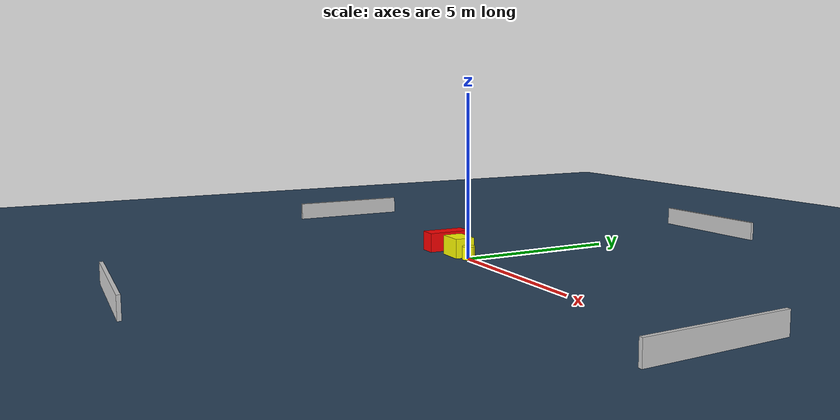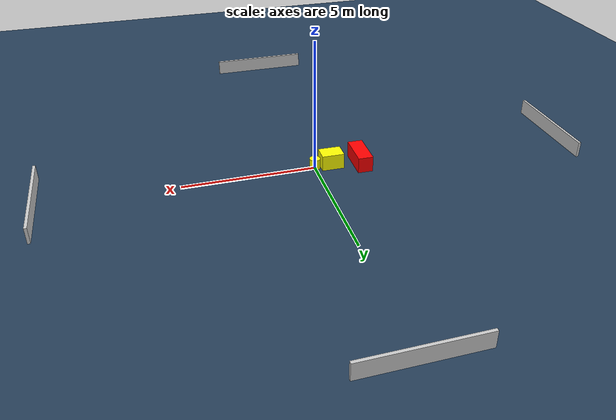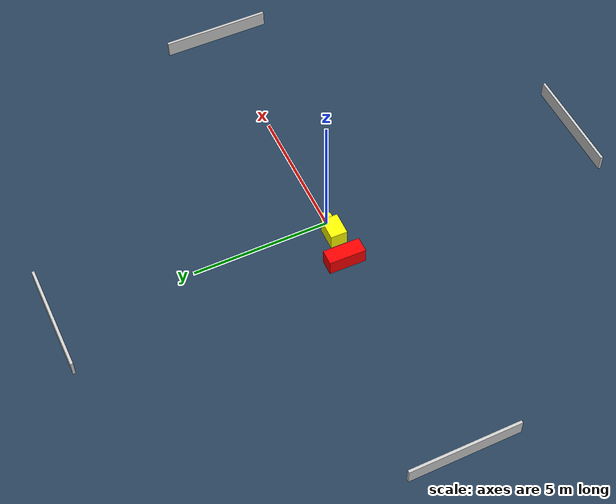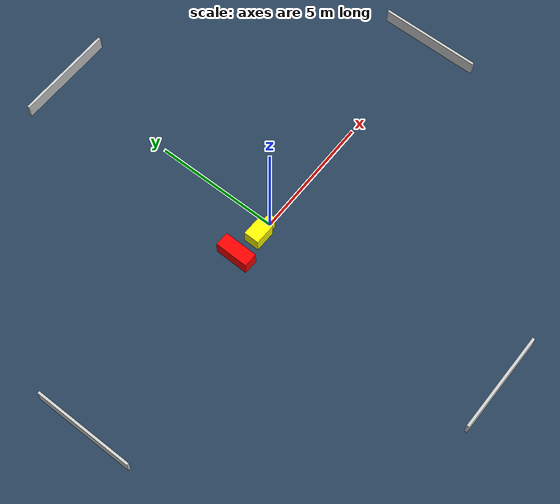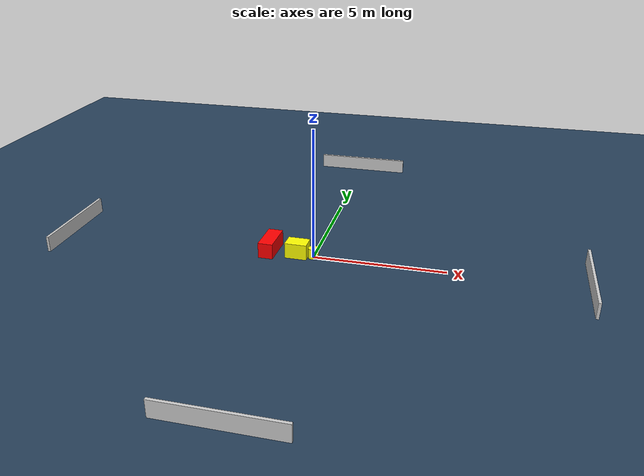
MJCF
<?xml version="1.0" ?>
<mujoco model="generated_environment">
  <option timestep="0.01" integrator="RK4" cone="elliptic"/>
  <default>
    <geom density="1"/>
  </default>
  <asset>
    <texture builtin="gradient" height="3072" name="skybox" rgb1="0.3 0.5 0.7" rgb2="0 0 0" type="skybox" width="512"/>
    <texture builtin="checker" height="300" name="groundplane" rgb1="0.2 0.3 0.4" rgb2="0.1 0.2 0.3" type="2d" width="300"/>
    <material name="groundplane" reflectance="0.2" texrepeat="5 5" texture="groundplane"/>
  </asset>
  <worldbody>
    <light dir="0 0 -1" directional="true" pos="0 0 1.5"/>
    <geom condim="3" friction="0.5 0.005 0.001" material="groundplane" name="floor" pos="0 0 0" size="0 0 0.05" type="plane"/>
    <body name="walls">
      <geom name="wall_1" condim="4" pos="-10.0 0.0 0.3" rgba="0.800000011920929 0.800000011920929 0.800000011920929 1.0" size="0.05 2.0 0.3" type="box"/>
      <geom name="wall_2" condim="4" pos="10.0 0.0 0.3" rgba="0.800000011920929 0.800000011920929 0.800000011920929 1.0" size="0.05 2.0 0.3" type="box"/>
      <geom name="wall_3" condim="4" pos="0.0 -10.0 0.3" rgba="0.800000011920929 0.800000011920929 0.800000011920929 1.0" size="2.0 0.05 0.3" type="box"/>
      <geom name="wall_4" condim="4" pos="0.0 10.0 0.3" rgba="0.800000011920929 0.800000011920929 0.800000011920929 1.0" size="2.0 0.05 0.3" type="box"/>
    </body>
    <body name="robot">
      <joint name="joint_x" type="slide" pos="0 0 0" axis="1 0 0"/>
      <joint name="joint_y" type="slide" pos="0 0 0" axis="0 1 0"/>
      <geom name="robot" type="cylinder" pos="0.0 0.0 0.2" size="0.2 0.2 0.0" mass="5.0" friction="1.0 0.005 0.0001" condim="4" rgba="1.0 1.0 0.0 1.0"/>
    </body>
    <body name="obstacle_1_movable">
      <geom name="obstacle_1_movable" condim="4" pos="-0.629751249605313 0.008143836196364463 0.3" euler="0 0 179.15102481794557" friction="0.0 0.005 0.001" rgba="1.0 1.0 0.0 1.0" size="0.41996797592153196 0.3074931543830947 0.3" type="box" mass="0.1"/>
      <joint type="free"/>
    </body>
    <body name="obstacle_2_static">
      <geom name="obstacle_2_static" condim="4" pos="-1.7361451364645977 0.14556762074712565 0.3" euler="0 0 358.9439859552791" friction="0.0 0.005 0.001" rgba="1.0 0.0 0.0 1.0" size="0.2827618357200602 0.6728066872433073 0.3" type="box"/>
    </body>
  </worldbody>
  <actuator>
    <motor name="actuator_x" joint="joint_x" gear="1" ctrlrange="-1 1"/>
    <motor name="actuator_y" joint="joint_y" gear="1" ctrlrange="-1 1"/>
  </actuator>
</mujoco>
